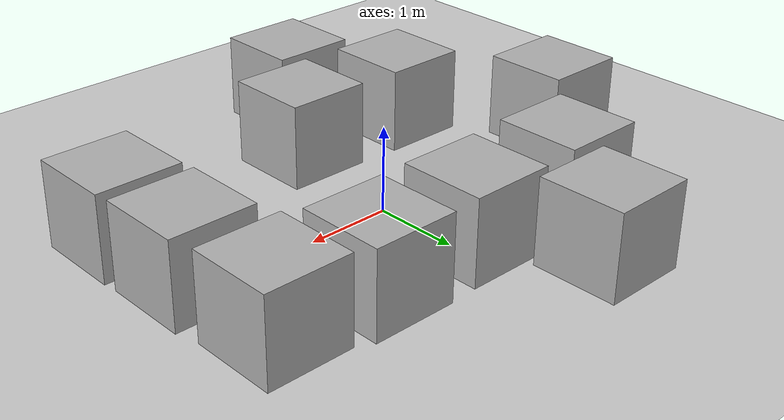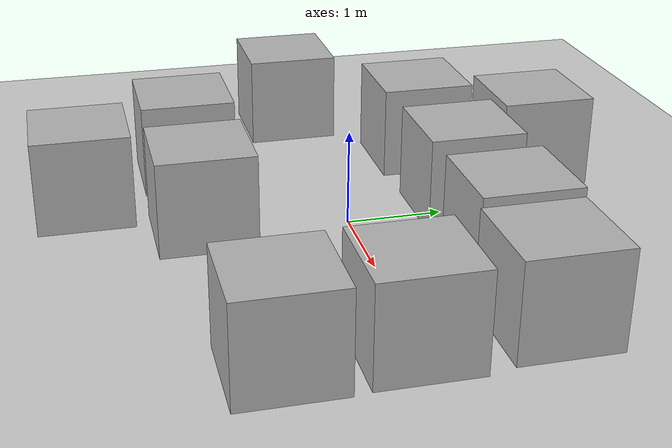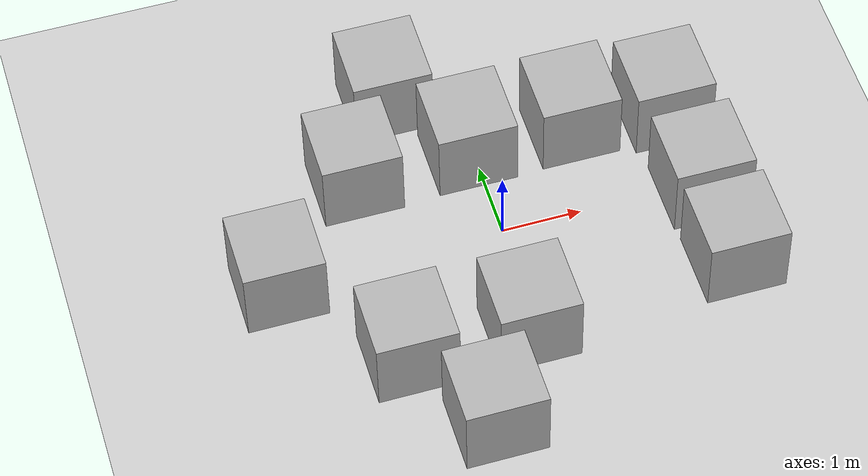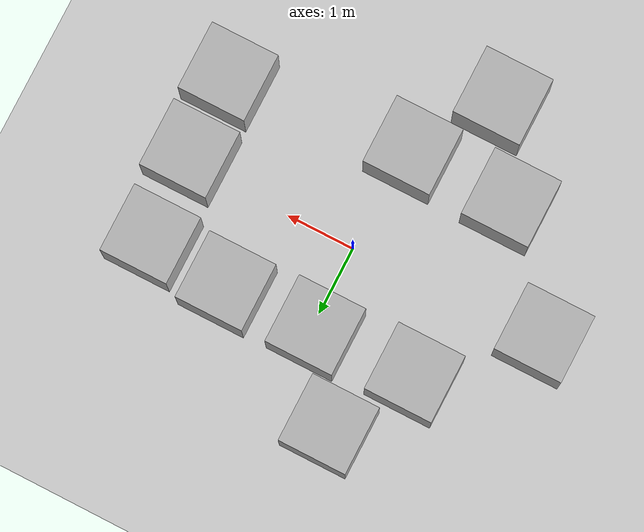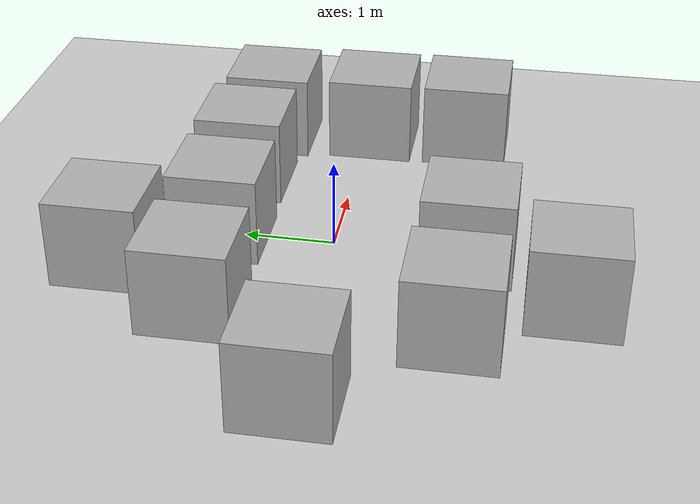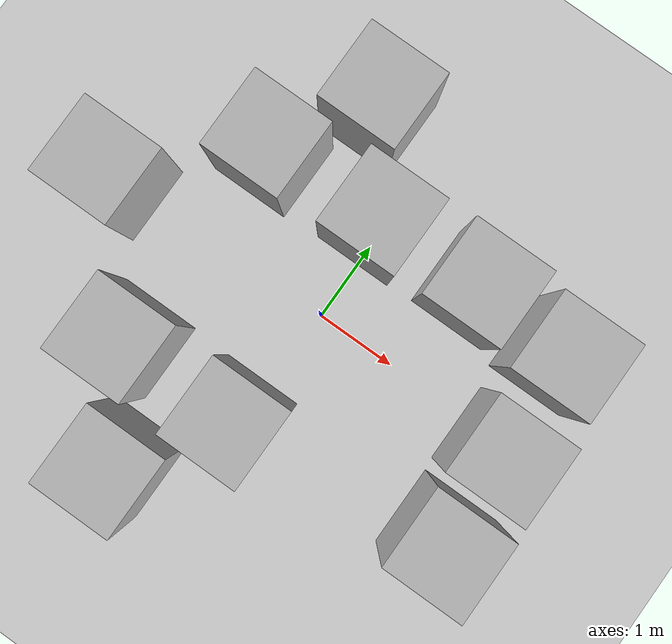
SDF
<?xml version="1.0" ?>

<sdf version='1.6'>
  <world name='world_boxes'>
    <physics name='1ms' type='ignored'>
      <max_step_size>0.001</max_step_size>
      <real_time_factor>1</real_time_factor>
      <real_time_update_rate>1000</real_time_update_rate>
    </physics>
    <plugin name='gz::sim::systems::Physics' filename='gz-sim-physics-system'/>
    <plugin name='gz::sim::systems::UserCommands' filename='gz-sim-user-commands-system'/>
    <plugin name='gz::sim::systems::SceneBroadcaster' filename='gz-sim-scene-broadcaster-system'/>
    <plugin name='gz::sim::systems::Contact' filename='gz-sim-contact-system'/>
    <plugin name='gz::sim::systems::Sensors' filename='gz-sim-sensors-system'>
      <render_engine>ogre2</render_engine>
    </plugin>
    <plugin name='gz::sim::systems::Imu' filename='gz-sim-imu-system'/>
    <gravity>0 0 -9.8000000000000007</gravity>
    <magnetic_field>5.5644999999999998e-06 2.2875799999999999e-05 -4.2388400000000002e-05</magnetic_field>
    <atmosphere type='adiabatic'/>
    <scene>
      <ambient>0.400000006 0.400000006 0.400000006 1</ambient>
      <background>0.699999988 0.699999988 0.699999988 1</background>
      <shadows>true</shadows>
    </scene>
    <model name='ground_plane'>
      <static>true</static>
      <link name='link'>
        <collision name='collision'>
          <geometry>
            <plane>
              <normal>0 0 1</normal>
              <size>100 100</size>
            </plane>
          </geometry>
          <surface>
            <friction>
              <ode>
                <mu>50</mu>
              </ode>
            </friction>
            <bounce/>
            <contact/>
          </surface>
        </collision>
        <visual name='visual'>
          <geometry>
            <plane>
              <normal>0 0 1</normal>
              <size>100 100</size>
            </plane>
          </geometry>
          <material>
            <ambient>0.800000012 0.800000012 0.800000012 1</ambient>
            <diffuse>0.800000012 0.800000012 0.800000012 1</diffuse>
            <specular>0.800000012 0.800000012 0.800000012 1</specular>
          </material>
        </visual>
        <pose>0 0 0 0 0 0</pose>
        <inertial>
          <pose>0 0 0 0 0 0</pose>
          <mass>1</mass>
          <inertia>
            <ixx>1</ixx>
            <ixy>0</ixy>
            <ixz>0</ixz>
            <iyy>1</iyy>
            <iyz>0</iyz>
            <izz>1</izz>
          </inertia>
        </inertial>
        <enable_wind>false</enable_wind>
      </link>
      <pose>0 0 0 0 0 0</pose>
      <self_collide>false</self_collide>
    </model>
    <model name='box'>
      <pose>-0.076632325334099471 1.2401687043662071 0.49999999990199806 6.2287739151293738e-22 9.3279666454713669e-22 -3.6315533669320137e-22</pose>
      <link name='box_link'>
        <inertial>
          <inertia>
            <ixx>0.16666</ixx>
            <ixy>0</ixy>
            <ixz>0</ixz>
            <iyy>0.16666</iyy>
            <iyz>0</iyz>
            <izz>0.16666</izz>
          </inertia>
          <mass>1</mass>
          <pose>0 0 0 0 0 0</pose>
        </inertial>
        <collision name='box_collision'>
          <geometry>
            <box>
              <size>1 1 1</size>
            </box>
          </geometry>
          <surface>
            <friction>
              <ode/>
            </friction>
            <bounce/>
            <contact/>
          </surface>
        </collision>
        <visual name='box_visual'>
          <geometry>
            <box>
              <size>1 1 1</size>
            </box>
          </geometry>
          <material>
            <ambient>0.300000012 0.300000012 0.300000012 1</ambient>
            <diffuse>0.699999988 0.699999988 0.699999988 1</diffuse>
            <specular>1 1 1 1</specular>
          </material>
        </visual>
        <pose>0 0 0 0 0 0</pose>
        <enable_wind>false</enable_wind>
      </link>
      <static>false</static>
      <self_collide>false</self_collide>
    </model>
    <model name='box_0'>
      <pose>-0.12777367736923673 -1.5038188897475078 0.49999999990199806 1.7084716059672498e-21 1.7859134985792927e-21 -2.0193124312478175e-22</pose>
      <link name='box_link'>
        <inertial>
          <inertia>
            <ixx>0.16666</ixx>
            <ixy>0</ixy>
            <ixz>0</ixz>
            <iyy>0.16666</iyy>
            <iyz>0</iyz>
            <izz>0.16666</izz>
          </inertia>
          <mass>1</mass>
          <pose>0 0 0 0 0 0</pose>
        </inertial>
        <collision name='box_collision'>
          <geometry>
            <box>
              <size>1 1 1</size>
            </box>
          </geometry>
          <surface>
            <friction>
              <ode/>
            </friction>
            <bounce/>
            <contact/>
          </surface>
        </collision>
        <visual name='box_visual'>
          <geometry>
            <box>
              <size>1 1 1</size>
            </box>
          </geometry>
          <material>
            <ambient>0.300000012 0.300000012 0.300000012 1</ambient>
            <diffuse>0.699999988 0.699999988 0.699999988 1</diffuse>
            <specular>1 1 1 1</specular>
          </material>
        </visual>
        <pose>0 0 0 0 0 0</pose>
        <enable_wind>false</enable_wind>
      </link>
      <static>false</static>
      <self_collide>false</self_collide>
    </model>
    <model name='box_1'>
      <pose>-1.5405035885906875 1.1956689969464165 0.49999999990199806 6.2287739151293738e-22 9.3279666454713669e-22 -3.6315533669320137e-22</pose>
      <link name='box_link'>
        <inertial>
          <inertia>
            <ixx>0.16666</ixx>
            <ixy>0</ixy>
            <ixz>0</ixz>
            <iyy>0.16666</iyy>
            <iyz>0</iyz>
            <izz>0.16666</izz>
          </inertia>
          <mass>1</mass>
          <pose>0 0 0 0 0 0</pose>
        </inertial>
        <collision name='box_collision'>
          <geometry>
            <box>
              <size>1 1 1</size>
            </box>
          </geometry>
          <surface>
            <friction>
              <ode/>
            </friction>
            <bounce/>
            <contact/>
          </surface>
        </collision>
        <visual name='box_visual'>
          <geometry>
            <box>
              <size>1 1 1</size>
            </box>
          </geometry>
          <material>
            <ambient>0.300000012 0.300000012 0.300000012 1</ambient>
            <diffuse>0.699999988 0.699999988 0.699999988 1</diffuse>
            <specular>1 1 1 1</specular>
          </material>
        </visual>
        <pose>0 0 0 0 0 0</pose>
        <enable_wind>false</enable_wind>
      </link>
      <static>false</static>
      <self_collide>false</self_collide>
    </model>
    <model name='box_2'>
      <pose>-1.6158118620465689 -1.4798699558911661 0.49999999990199806 1.3553586529084299e-21 3.8657091965065628e-21 -1.8991622235254405e-22</pose>
      <link name='box_link'>
        <inertial>
          <inertia>
            <ixx>0.16666</ixx>
            <ixy>0</ixy>
            <ixz>0</ixz>
            <iyy>0.16666</iyy>
            <iyz>0</iyz>
            <izz>0.16666</izz>
          </inertia>
          <mass>1</mass>
          <pose>0 0 0 0 0 0</pose>
        </inertial>
        <collision name='box_collision'>
          <geometry>
            <box>
              <size>1 1 1</size>
            </box>
          </geometry>
          <surface>
            <friction>
              <ode/>
            </friction>
            <bounce/>
            <contact/>
          </surface>
        </collision>
        <visual name='box_visual'>
          <geometry>
            <box>
              <size>1 1 1</size>
            </box>
          </geometry>
          <material>
            <ambient>0.300000012 0.300000012 0.300000012 1</ambient>
            <diffuse>0.699999988 0.699999988 0.699999988 1</diffuse>
            <specular>1 1 1 1</specular>
          </material>
        </visual>
        <pose>0 0 0 0 0 0</pose>
        <enable_wind>false</enable_wind>
      </link>
      <static>false</static>
      <self_collide>false</self_collide>
    </model>
    <model name='box_3'>
      <pose>-2.8300644288207595 -0.066342153739517185 0.49999999990199806 6.2287739151293738e-22 9.3279666454713669e-22 -3.6315533669320137e-22</pose>
      <link name='box_link'>
        <inertial>
          <inertia>
            <ixx>0.16666</ixx>
            <ixy>0</ixy>
            <ixz>0</ixz>
            <iyy>0.16666</iyy>
            <iyz>0</iyz>
            <izz>0.16666</izz>
          </inertia>
          <mass>1</mass>
          <pose>0 0 0 0 0 0</pose>
        </inertial>
        <collision name='box_collision'>
          <geometry>
            <box>
              <size>1 1 1</size>
            </box>
          </geometry>
          <surface>
            <friction>
              <ode/>
            </friction>
            <bounce/>
            <contact/>
          </surface>
        </collision>
        <visual name='box_visual'>
          <geometry>
            <box>
              <size>1 1 1</size>
            </box>
          </geometry>
          <material>
            <ambient>0.300000012 0.300000012 0.300000012 1</ambient>
            <diffuse>0.699999988 0.699999988 0.699999988 1</diffuse>
            <specular>1 1 1 1</specular>
          </material>
        </visual>
        <pose>0 0 0 0 0 0</pose>
        <enable_wind>false</enable_wind>
      </link>
      <static>false</static>
      <self_collide>false</self_collide>
    </model>
    <model name='box_4'>
      <pose>2.5083817204807755 -0.095674879962092896 0.49999999990199806 6.2287739151293738e-22 9.3279666454713669e-22 -3.6315533669320137e-22</pose>
      <link name='box_link'>
        <inertial>
          <inertia>
            <ixx>0.16666</ixx>
            <ixy>0</ixy>
            <ixz>0</ixz>
            <iyy>0.16666</iyy>
            <iyz>0</iyz>
            <izz>0.16666</izz>
          </inertia>
          <mass>1</mass>
          <pose>0 0 0 0 0 0</pose>
        </inertial>
        <collision name='box_collision'>
          <geometry>
            <box>
              <size>1 1 1</size>
            </box>
          </geometry>
          <surface>
            <friction>
              <ode/>
            </friction>
            <bounce/>
            <contact/>
          </surface>
        </collision>
        <visual name='box_visual'>
          <geometry>
            <box>
              <size>1 1 1</size>
            </box>
          </geometry>
          <material>
            <ambient>0.300000012 0.300000012 0.300000012 1</ambient>
            <diffuse>0.699999988 0.699999988 0.699999988 1</diffuse>
            <specular>1 1 1 1</specular>
          </material>
        </visual>
        <pose>0 0 0 0 0 0</pose>
        <enable_wind>false</enable_wind>
      </link>
      <static>false</static>
      <self_collide>false</self_collide>
    </model>
    <model name='box_5'>
      <pose>-0.84130144155087849 2.3286545479500909 0.49999999990199806 -4.8634040094727199e-22 -3.3145686633065449e-22 -4.0386248625193019e-22</pose>
      <link name='box_link'>
        <inertial>
          <inertia>
            <ixx>0.16666</ixx>
            <ixy>0</ixy>
            <ixz>0</ixz>
            <iyy>0.16666</iyy>
            <iyz>0</iyz>
            <izz>0.16666</izz>
          </inertia>
          <mass>1</mass>
          <pose>0 0 0 0 0 0</pose>
        </inertial>
        <collision name='box_collision'>
          <geometry>
            <box>
              <size>1 1 1</size>
            </box>
          </geometry>
          <surface>
            <friction>
              <ode/>
            </friction>
            <bounce/>
            <contact/>
          </surface>
        </collision>
        <visual name='box_visual'>
          <geometry>
            <box>
              <size>1 1 1</size>
            </box>
          </geometry>
          <material>
            <ambient>0.300000012 0.300000012 0.300000012 1</ambient>
            <diffuse>0.699999988 0.699999988 0.699999988 1</diffuse>
            <specular>1 1 1 1</specular>
          </material>
        </visual>
        <pose>0 0 0 0 0 0</pose>
        <enable_wind>false</enable_wind>
      </link>
      <static>false</static>
      <self_collide>false</self_collide>
    </model>
    <model name='box_6'>
      <pose>-0.892494494515082 -2.653285636584541 0.49999999990199806 -2.1374644751133802e-21 3.8504178019075057e-22 -1.1395649197390025e-22</pose>
      <link name='box_link'>
        <inertial>
          <inertia>
            <ixx>0.16666</ixx>
            <ixy>0</ixy>
            <ixz>0</ixz>
            <iyy>0.16666</iyy>
            <iyz>0</iyz>
            <izz>0.16666</izz>
          </inertia>
          <mass>1</mass>
          <pose>0 0 0 0 0 0</pose>
        </inertial>
        <collision name='box_collision'>
          <geometry>
            <box>
              <size>1 1 1</size>
            </box>
          </geometry>
          <surface>
            <friction>
              <ode/>
            </friction>
            <bounce/>
            <contact/>
          </surface>
        </collision>
        <visual name='box_visual'>
          <geometry>
            <box>
              <size>1 1 1</size>
            </box>
          </geometry>
          <material>
            <ambient>0.300000012 0.300000012 0.300000012 1</ambient>
            <diffuse>0.699999988 0.699999988 0.699999988 1</diffuse>
            <specular>1 1 1 1</specular>
          </material>
        </visual>
        <pose>0 0 0 0 0 0</pose>
        <enable_wind>false</enable_wind>
      </link>
      <static>false</static>
      <self_collide>false</self_collide>
    </model>
    <model name='box_7'>
      <pose>1.2579902206610449 1.2630662397557737 0.49999999990199806 6.2287739151293738e-22 9.3279666454713669e-22 -3.6315533669320137e-22</pose>
      <link name='box_link'>
        <inertial>
          <inertia>
            <ixx>0.16666</ixx>
            <ixy>0</ixy>
            <ixz>0</ixz>
            <iyy>0.16666</iyy>
            <iyz>0</iyz>
            <izz>0.16666</izz>
          </inertia>
          <mass>1</mass>
          <pose>0 0 0 0 0 0</pose>
        </inertial>
        <collision name='box_collision'>
          <geometry>
            <box>
              <size>1 1 1</size>
            </box>
          </geometry>
          <surface>
            <friction>
              <ode/>
            </friction>
            <bounce/>
            <contact/>
          </surface>
        </collision>
        <visual name='box_visual'>
          <geometry>
            <box>
              <size>1 1 1</size>
            </box>
          </geometry>
          <material>
            <ambient>0.300000012 0.300000012 0.300000012 1</ambient>
            <diffuse>0.699999988 0.699999988 0.699999988 1</diffuse>
            <specular>1 1 1 1</specular>
          </material>
        </visual>
        <pose>0 0 0 0 0 0</pose>
        <enable_wind>false</enable_wind>
      </link>
      <static>false</static>
      <self_collide>false</self_collide>
    </model>
    <model name='box_8'>
      <pose>2.5315537668989769 -1.2542315990662405 0.49999999990199806 6.2287739151293738e-22 9.3279666454713669e-22 -3.6315533669320137e-22</pose>
      <link name='box_link'>
        <inertial>
          <inertia>
            <ixx>0.16666</ixx>
            <ixy>0</ixy>
            <ixz>0</ixz>
            <iyy>0.16666</iyy>
            <iyz>0</iyz>
            <izz>0.16666</izz>
          </inertia>
          <mass>1</mass>
          <pose>0 0 0 0 0 0</pose>
        </inertial>
        <collision name='box_collision'>
          <geometry>
            <box>
              <size>1 1 1</size>
            </box>
          </geometry>
          <surface>
            <friction>
              <ode/>
            </friction>
            <bounce/>
            <contact/>
          </surface>
        </collision>
        <visual name='box_visual'>
          <geometry>
            <box>
              <size>1 1 1</size>
            </box>
          </geometry>
          <material>
            <ambient>0.300000012 0.300000012 0.300000012 1</ambient>
            <diffuse>0.699999988 0.699999988 0.699999988 1</diffuse>
            <specular>1 1 1 1</specular>
          </material>
        </visual>
        <pose>0 0 0 0 0 0</pose>
        <enable_wind>false</enable_wind>
      </link>
      <static>false</static>
      <self_collide>false</self_collide>
    </model>
    <model name='box_9'>
      <pose>2.4392722924181767 1.1659617246611731 0.49999999990199806 6.2287739151293738e-22 9.3279666454713669e-22 -3.6315533669320137e-22</pose>
      <link name='box_link'>
        <inertial>
          <inertia>
            <ixx>0.16666</ixx>
            <ixy>0</ixy>
            <ixz>0</ixz>
            <iyy>0.16666</iyy>
            <iyz>0</iyz>
            <izz>0.16666</izz>
          </inertia>
          <mass>1</mass>
          <pose>0 0 0 0 0 0</pose>
        </inertial>
        <collision name='box_collision'>
          <geometry>
            <box>
              <size>1 1 1</size>
            </box>
          </geometry>
          <surface>
            <friction>
              <ode/>
            </friction>
            <bounce/>
            <contact/>
          </surface>
        </collision>
        <visual name='box_visual'>
          <geometry>
            <box>
              <size>1 1 1</size>
            </box>
          </geometry>
          <material>
            <ambient>0.300000012 0.300000012 0.300000012 1</ambient>
            <diffuse>0.699999988 0.699999988 0.699999988 1</diffuse>
            <specular>1 1 1 1</specular>
          </material>
        </visual>
        <pose>0 0 0 0 0 0</pose>
        <enable_wind>false</enable_wind>
      </link>
      <static>false</static>
      <self_collide>false</self_collide>
    </model>
    <light name='sun' type='directional'>
      <pose>0 0 10 0 0 0</pose>
      <cast_shadows>true</cast_shadows>
      <intensity>1</intensity>
      <direction>-0.5 0.10000000000000001 -0.90000000000000002</direction>
      <diffuse>0.800000012 0.800000012 0.800000012 1</diffuse>
      <specular>0.200000003 0.200000003 0.200000003 1</specular>
      <attenuation>
        <range>1000</range>
        <linear>0.01</linear>
        <constant>0.90000000000000002</constant>
        <quadratic>0.001</quadratic>
      </attenuation>
      <spot>
        <inner_angle>0</inner_angle>
        <outer_angle>0</outer_angle>
        <falloff>0</falloff>
      </spot>
    </light>
  </world>
</sdf>
